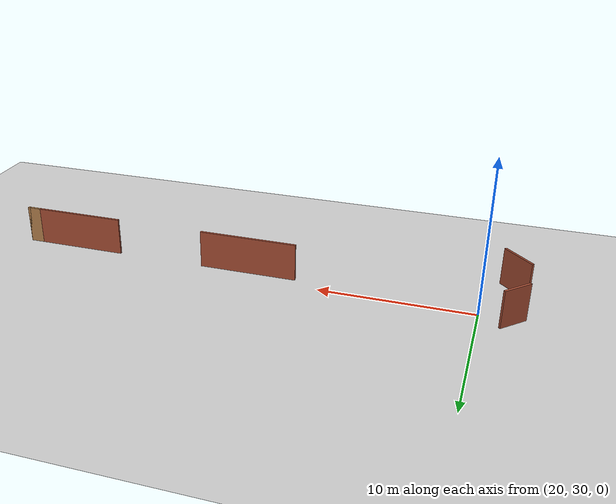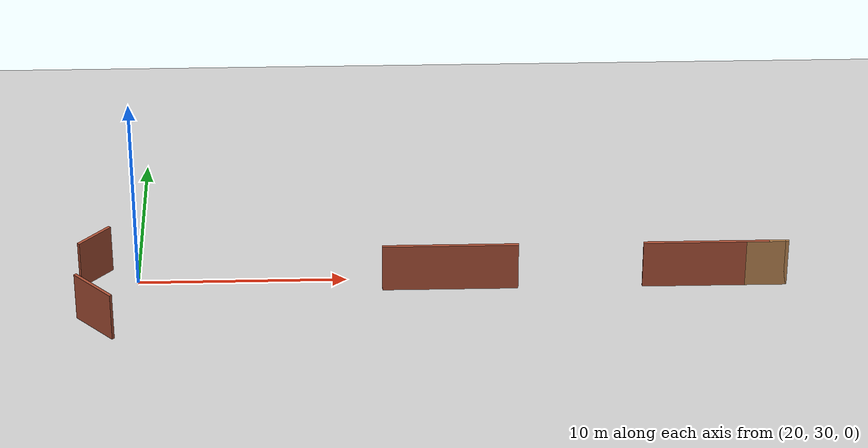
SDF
<sdf version="1.6">
 <world name="default">
  <model name="maze_rect_3">
   <pose>4e-06 -9.9e-05 0 0 -0 1.57001</pose>
   <link name="Wall_153">
    <collision name="Wall_153_Collision">
     <geometry><box><size>2 0.15 2.5</size></box></geometry>
     <pose>0 0 1.25 0 -0 0</pose>
    </collision>
    <visual name="Wall_153_Visual">
     <pose>0 0 1.25 0 -0 0</pose>
     <geometry><box><size>2 0.15 2.5</size></box></geometry>
     <material>
      <script><uri>file://media/materials/scripts/gazebo.material</uri><name>Gazebo/Bricks</name></script>
      <ambient>1 1 1 1</ambient>
     </material>
     <meta><layer>0</layer></meta>
    </visual>
    <pose>30.4434 -17.9505 0 0 -0 2.35619</pose>
   </link>
   <link name="Wall_155">
    <collision name="Wall_155_Collision">
     <geometry><box><size>2.5 0.15 2.5</size></box></geometry>
     <pose>0 0 1.25 0 -0 0</pose>
    </collision>
    <visual name="Wall_155_Visual">
     <pose>0 0 1.25 0 -0 0</pose>
     <geometry><box><size>2.5 0.15 2.5</size></box></geometry>
     <material>
      <script><uri>file://media/materials/scripts/gazebo.material</uri><name>Gazebo/Bricks</name></script>
      <ambient>1 1 1 1</ambient>
     </material>
     <meta><layer>0</layer></meta>
    </visual>
    <pose>26.3585 -18.1272 0 0 -0 -2.35619</pose>
   </link>
   <static>1</static>
  </model>
  <model name="map_palace_v2_model_1">
   <pose>0 60 0 0 -0 0</pose>
   <link name="Wall_33">
    <collision name="Wall_33_Collision">
     <geometry><box><size>6.5 0.15 2.5</size></box></geometry>
     <pose>0 0 1.25 0 -0 0</pose>
    </collision>
    <visual name="Wall_33_Visual">
     <pose>0 0 1.25 0 -0 0</pose>
     <geometry><box><size>6.5 0.15 2.5</size></box></geometry>
     <material>
      <script><uri>file://media/materials/scripts/gazebo.material</uri><name>Gazebo/Bricks</name></script>
      <ambient>1 1 1 1</ambient>
     </material>
     <meta><layer>0</layer></meta>
    </visual>
    <pose>34.9557 -30.8525 0 0 -0 0</pose>
   </link>
   <link name="Wall_35">
    <collision name="Wall_35_Collision">
     <geometry><box><size>6 0.15 2.5</size></box></geometry>
     <pose>0 0 1.25 0 -0 0</pose>
    </collision>
    <visual name="Wall_35_Visual">
     <pose>0 0 1.25 0 -0 0</pose>
     <geometry><box><size>6 0.15 2.5</size></box></geometry>
     <material>
      <script><uri>file://media/materials/scripts/gazebo.material</uri><name>Gazebo/Bricks</name></script>
      <ambient>0.760784 0.662745 0.627451 1</ambient>
     </material>
     <meta><layer>0</layer></meta>
    </visual>
    <pose>47.1557 -30.8525 0 0 -0 0</pose>
   </link>
   <static>1</static>
  </model>
  <model name="wall_22">
   <pose>50.0795 29.1467 0 0 -0 0</pose>
   <link name="Wall_2">
    <collision name="Wall_2_Collision">
     <geometry><box><size>2 0.15 2.5</size></box></geometry>
     <pose>0 0 1.25 0 -0 0</pose>
    </collision>
    <visual name="Wall_2_Visual">
     <pose>0 0 1.25 0 -0 0</pose>
     <geometry><box><size>2 0.15 2.5</size></box></geometry>
     <material>
      <script><uri>file://media/materials/scripts/gazebo.material</uri><name>Gazebo/Wood</name></script>
      <ambient>1 1 1 1</ambient>
     </material>
     <meta><layer>0</layer></meta>
    </visual>
    <pose>-0.005 -0 0 0 -0 0</pose>
   </link>
   <link name="Wall_3">
    <collision name="Wall_3_Collision">
     <geometry><box><size>0.16 0.15 2.5</size></box></geometry>
     <pose>0 0 1.25 0 -0 0</pose>
    </collision>
    <visual name="Wall_3_Visual">
     <pose>0 0 1.25 0 -0 0</pose>
     <geometry><box><size>0.16 0.15 2.5</size></box></geometry>
     <material>
      <script><uri>file://media/materials/scripts/gazebo.material</uri><name>Gazebo/Wood</name></script>
      <ambient>1 1 1 1</ambient>
     </material>
     <meta><layer>0</layer></meta>
    </visual>
    <pose>0.925 0 0 0 -0 0</pose>
   </link>
   <static>1</static>
  </model>
  <model name="ground_plane">
   <static>1</static>
   <link name="link">
    <collision name="collision">
     <geometry><plane><normal>0 0 1</normal><size>100 100</size></plane></geometry>
     <surface>
      <contact><collide_bitmask>65535</collide_bitmask></contact>
      <friction><ode><mu>100</mu><mu2>50</mu2></ode></friction>
     </surface>
    </collision>
    <visual name="visual">
     <cast_shadows>0</cast_shadows>
     <geometry><plane><normal>0 0 1</normal><size>100 100</size></plane></geometry>
     <material>
      <script><uri>file://media/materials/scripts/gazebo.material</uri><name>Gazebo/Grey</name></script>
     </material>
    </visual>
   </link>
   <pose>9.31394 52.073 0 0 -0 0</pose>
  </model>
 </world>
</sdf>
